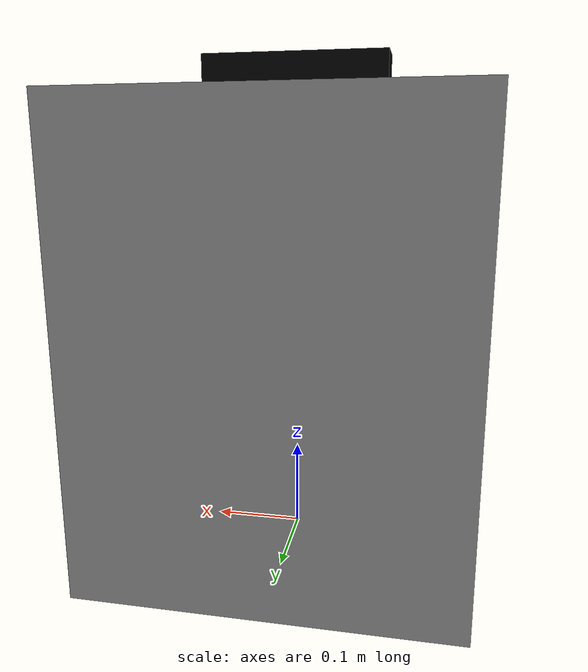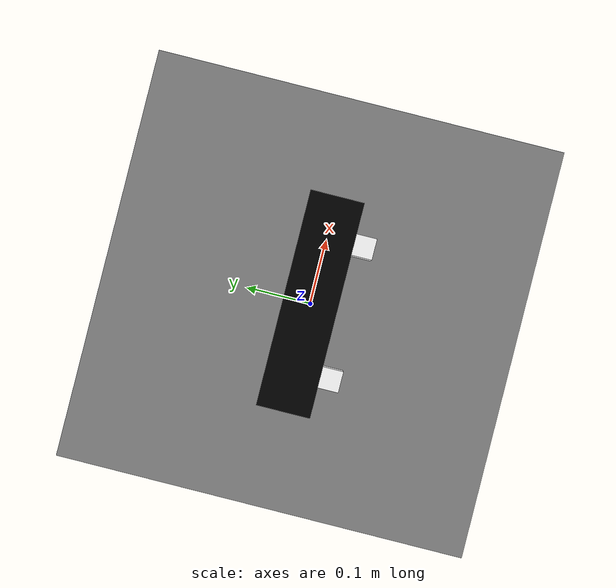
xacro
<?xml version="1.0"?>
<robot xmlns:xacro="http://www.ros.org/wiki/xacro" name="kinect_bot">

  <!-- Documentation on URDF: http://wiki.ros.org/urdf/XML -->
  <!-- Documentation on Xacro: http://wiki.ros.org/xacro -->

  <!-- Xacro properties are constants. -->
  <!-- Size of square 'camera' box -->
  <xacro:property name="camera_link" value="0.02" />

  <!-- Dimensions of platform. -->
  <xacro:property name="platform_width" value="0.4" />
  <xacro:property name="platform_length" value="0.4" />
  <xacro:property name="platform_height" value="0.5"/>

  <!-- Dimensions of kinect_model. -->
  <xacro:property name="kinect_model_width" value="0.2" />
  <xacro:property name="kinect_model_length" value="0.05" />
  <xacro:property name="kinect_model_height" value="0.05"/>

  <!-- Import all Gazebo-customisation elements, including Gazebo colours. -->
  <xacro:include filename="$(find kinect_description)/urdf/kinect.gazebo" />

  <!-- Import Rviz colours. -->
  <xacro:include filename="$(find kinect_description)/urdf/materials.xacro" />

  <link name="world" />

  <!-- Description of platform. -->
  <link name="platform_link">
    <collision>
      <geometry>
        <box size="${platform_width} ${platform_length} ${platform_height}" />
      </geometry>
      <origin rpy="0 0 0" xyz="0 0 0.25" />
    </collision>

    <visual>
      <geometry>
        <box size="${platform_width} ${platform_length} ${platform_height}" />
      </geometry>
      <origin rpy="0 0 0" xyz="0 0 0.25" />
      <material name="grey" />
    </visual>

    <inertial>
      <origin xyz="0 0 0" rpy="0 0 0" />
      <mass value="1" />
      <inertia
        ixx="1.0" ixy="0.0" ixz="0.0"
        iyy="1.0" iyz="0.0"
        izz="1.0" />
    </inertial>
  </link>

  <!-- Description of kinect. will be very basic -->
  <link name="kinect_link">
    <collision>
      <geometry>
        <box size="${kinect_model_width} ${kinect_model_length} ${kinect_model_height}" />
      </geometry>
      <origin rpy="0 0 0" xyz="0 0 0.525" />
    </collision>

    <visual>
      <geometry>
        <box size="${kinect_model_width} ${kinect_model_length} ${kinect_model_height}" />
      </geometry>
      <origin rpy="0 0 0" xyz="0 0 0.525" />
      <material name="black" />
    </visual>

    <inertial>
      <origin xyz="0 0 0" rpy="0 0 0" />
      <mass value="1" />
      <inertia
        ixx="1.0" ixy="0.0" ixz="0.0"
        iyy="1.0" iyz="0.0"
        izz="1.0" />
    </inertial>
  </link>

  <!-- Description of sensor.-->
  <link name="sensor">
    <collision>
      <geometry>
        <box size="${camera_link} ${camera_link} ${camera_link}"/>
      </geometry>
    </collision>

    <visual>
      <geometry>
         <box size="${camera_link} ${camera_link} ${camera_link}"/>
      </geometry>
      <origin rpy="0 0 0" xyz="0 0 0.4875"/>
       <material name="white" />
    </visual>

    <inertial>
      <mass value="1e-5" />
      <inertia ixx="1e-6" ixy="0" ixz="0" iyy="1e-6" iyz="0" izz="1e-6" />
      <origin xyz="0 0 0" rpy="0 0 0" />
    </inertial>
  </link>

  <!-- Description of camera.-->
  <link name="camera">
    <collision>
      <geometry>
        <box size="${camera_link} ${camera_link} ${camera_link}"/>
      </geometry>
    </collision>

    <visual>
      <geometry>
         <box size="${camera_link} ${camera_link} ${camera_link}"/>
      </geometry>
      <origin rpy="0 0 0" xyz="0 0 0.4875"/>
       <material name="white" />
    </visual>

    <inertial>
      <mass value="1e-5" />
      <inertia ixx="1e-6" ixy="0" ixz="0" iyy="1e-6" iyz="0" izz="1e-6" />
      <origin xyz="0 0 0" rpy="0 0 0" />
    </inertial>
  </link>

  <!-- Attach platform to world. -->
  <joint name="platform_to_world" type="fixed">
    <parent link="world" />
    <child link="platform_link" />
  </joint>

  <!-- Attach kinect to platform -->
  <joint name="kinect_to_platform" type="fixed">
    <parent link="platform_link" />
    <child link="kinect_link" />
  </joint>

  <!-- Attach sensor to the kinect. -->
  <joint name="sensor_to_kinect" type="fixed">
    <axis xyz="0 1 0" />
    <!-- Determine measurements xyz. -->
    <origin rpy="0 0 0" xyz="0.063 -0.035 0.035" />
    <parent link="kinect_link" />
    <child link="sensor" />
  </joint>

  <!-- Attach camera to the kinect. -->
  <joint name="camera_to_kinect" type="fixed">
    <axis xyz="0 1 0" />
    <!-- Determine measurements xyz. -->
    <origin rpy="0 0 0" xyz="-0.063 -0.035 0.035" />
    <parent link="kinect_link" />
    <child link="camera" />
  </joint>

</robot>

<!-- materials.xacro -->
<robot>

  <material name="blue">
    <color rgba="0 0 0.8 1" />
  </material>

  <material name="black">
    <color rgba="0.0 0.0 0.0 1.0" />
  </material>

  <material name="white">
    <color rgba="1 1 1 1" />
  </material>

  <material name="grey">
    <color rgba="0.5 0.5 0.5 1.0" />
  </material>

</robot>
